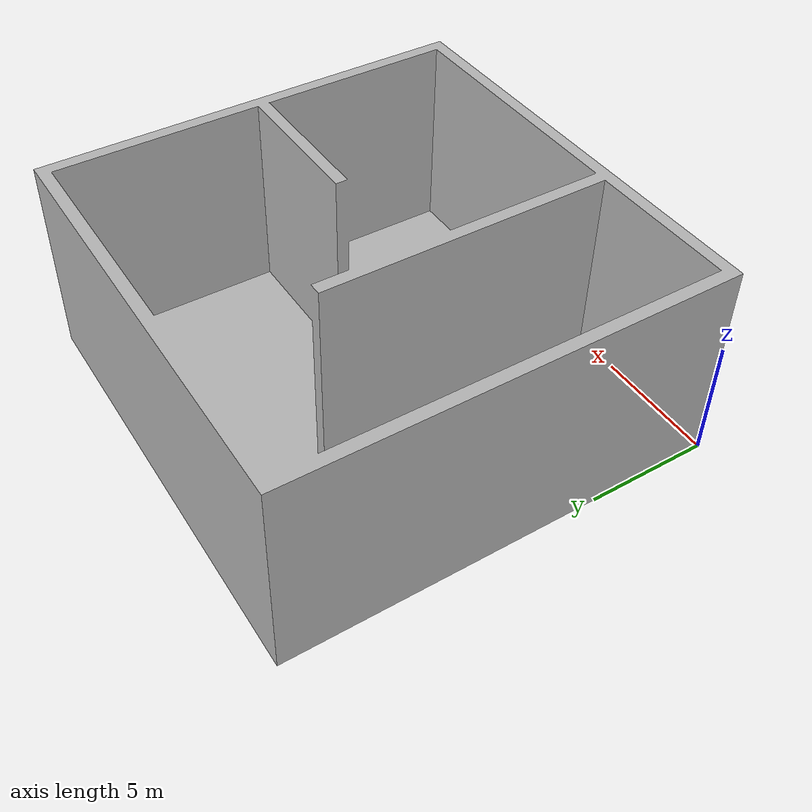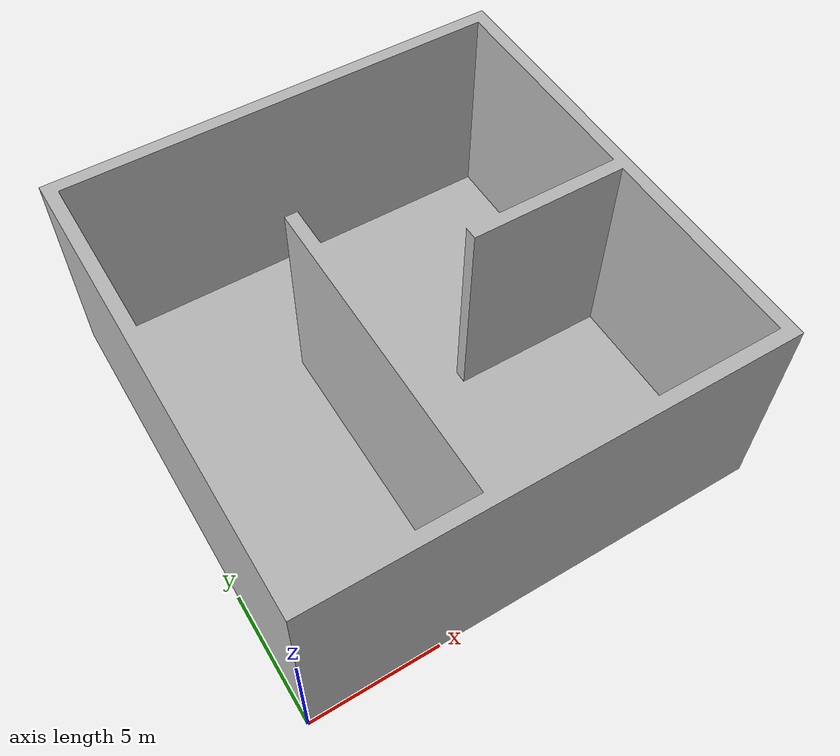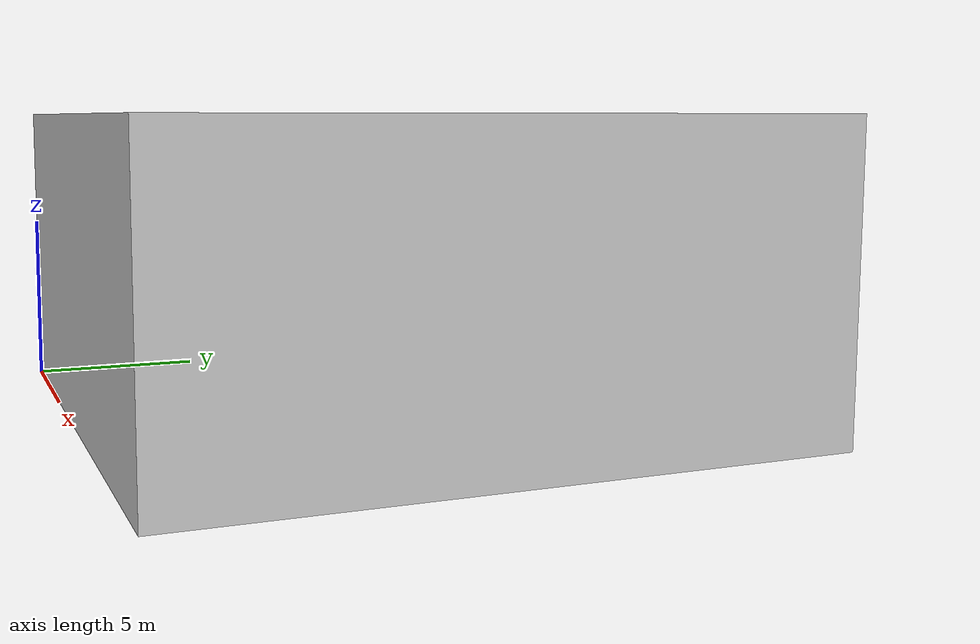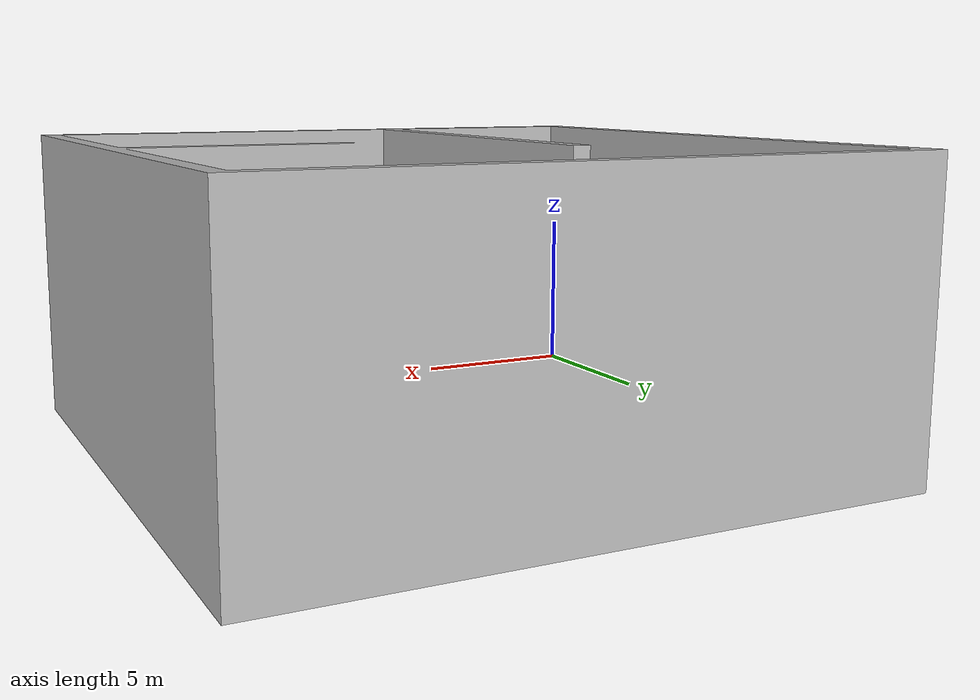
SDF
<?xml version="1.0" ?>
<sdf version="1.6">
  <model name="room">
    <!-- keep it static so physics doesn’t drop it -->
    <static>true</static>

    <link name="link">
      <!-- visual -->
      <visual name="visual">
        <geometry>
          <mesh>
           <uri>file:///models/room/meshes/room2.dae</uri>

          </mesh>
        </geometry>
      </visual>
      <!-- collision (use same mesh or a simplified one) -->
      <collision name="collision">
        <geometry>
          <mesh>
            <uri>file:///models/room/meshes/room2.dae</uri>

          </mesh>
        </geometry>
      </collision>
    </link>
  </model>
</sdf>
